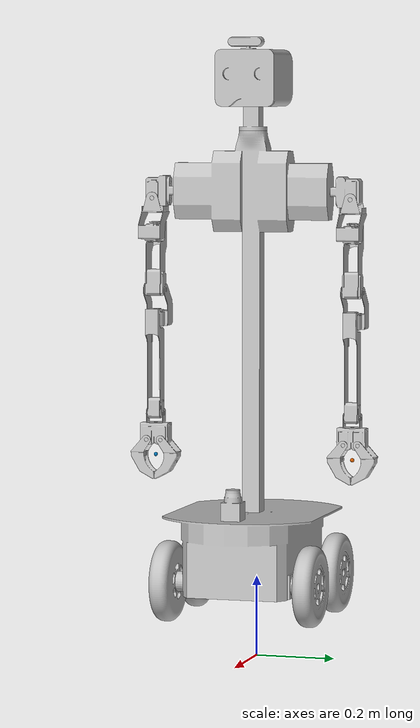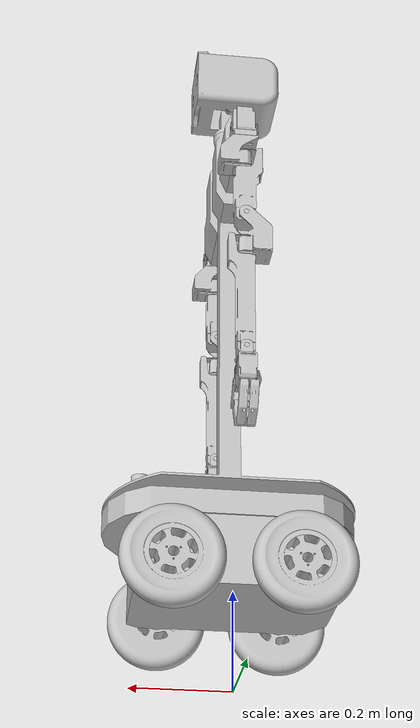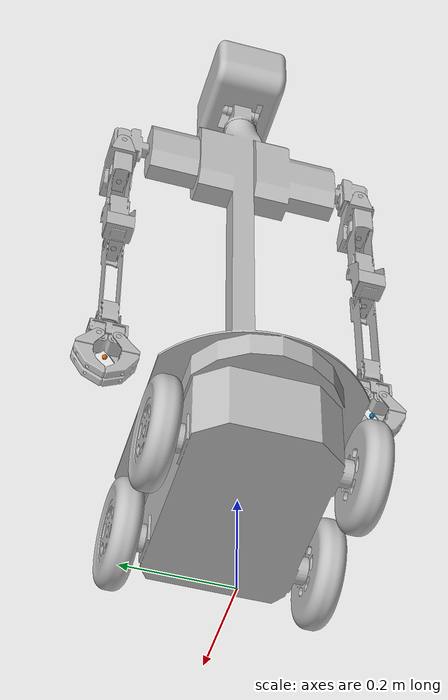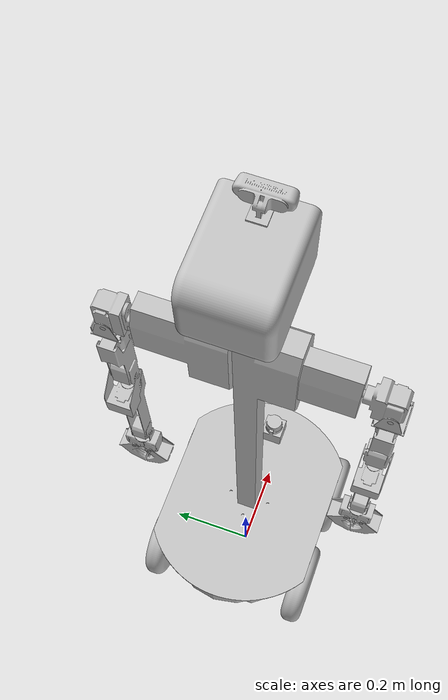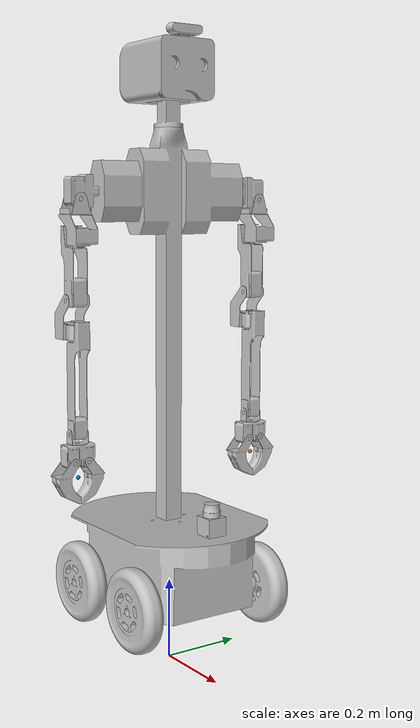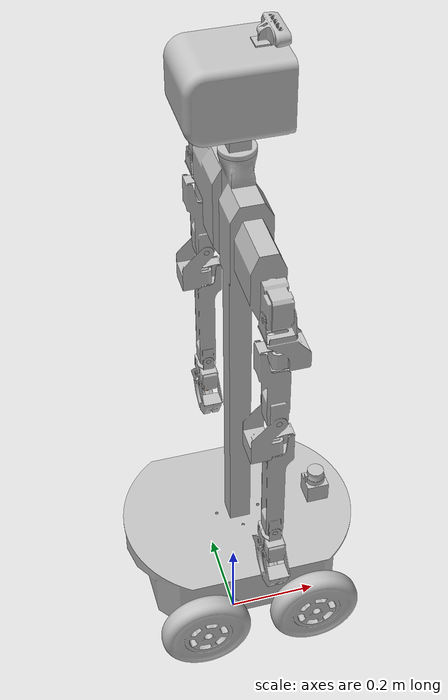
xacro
<?xml version="1.0" ?>
<robot name="bender" xmlns:xacro="http://www.ros.org/wiki/xacro">

<link name="base_link">
  <visual>
    <origin xyz="0 0 0" rpy="0 0 0"/>
    <geometry>
      <mesh filename="package://bender_description/meshes/base_link.stl" scale="0.001 0.001 0.001"/>
    </geometry>
    <material name="chassis_material">
      <color rgba="0.75 0.75 0.75 1.0"/>
    </material>
  </visual>
  <collision>
    <origin xyz="0 0 0" rpy="0 0 0"/>
    <geometry>
      <mesh filename="package://bender_description/meshes/base_link.stl" scale="0.001 0.001 0.001"/>
    </geometry>
  </collision>
</link>

<link name="base_footprint"/>

<joint name="base_footprint_joint" type="fixed">
  <parent link="base_footprint"/>
  <child link="base_link"/>
  <origin xyz="0 0 0.1" rpy="0 0 0"/>
</joint>

<link name="l2l_1">
  <inertial>
    <origin xyz="-0.008469138038562633 4.816697341814002e-07 -0.07819087904751898" rpy="0 0 0"/>
    <mass value="0.14071836856258027"/>
    <inertia ixx="9.8e-05" iyy="0.000118" izz="8.7e-05" ixy="-0.0" iyz="-0.0" ixz="1.7e-05"/>
  </inertial>
  <visual>
    <origin xyz="-0.035737 -0.247634 -1.04582" rpy="0 0 0"/>
    <geometry>
      <mesh filename="package://bender_description/meshes/l2l_1.stl" scale="0.001 0.001 0.001"/>
    </geometry>
    <material name="chassis_material">
      <color rgba="0.75 0.75 0.75 1.0"/>
    </material>
  </visual>
  <collision>
    <origin xyz="-0.035737 -0.247634 -1.04582" rpy="0 0 0"/>
    <geometry>
      <mesh filename="package://bender_description/meshes/l2l_1.stl" scale="0.001 0.001 0.001"/>
    </geometry>
  </collision>
</link>

<link name="l3l_1">
  <inertial>
    <origin xyz="-0.004049240589701097 -0.00011662761889197348 -0.1333626785766504" rpy="0 0 0"/>
    <mass value="0.13433192894969845"/>
    <inertia ixx="0.000296" iyy="0.000299" izz="4.9e-05" ixy="0.0" iyz="-0.0" ixz="4e-05"/>
  </inertial>
  <visual>
    <origin xyz="-0.007987 -0.247634 -0.985406" rpy="0 0 0"/>
    <geometry>
      <mesh filename="package://bender_description/meshes/l3l_1.stl" scale="0.001 0.001 0.001"/>
    </geometry>
    <material name="chassis_material">
      <color rgba="0.75 0.75 0.75 1.0"/>
    </material>
  </visual>
  <collision>
    <origin xyz="-0.007987 -0.247634 -0.985406" rpy="0 0 0"/>
    <geometry>
      <mesh filename="package://bender_description/meshes/l3l_1.stl" scale="0.001 0.001 0.001"/>
    </geometry>
  </collision>
</link>

<link name="l4l_1">
  <inertial>
    <origin xyz="-0.022033052289373113 -0.027751420924878867 -0.07009451131427447" rpy="0 0 0"/>
    <mass value="0.1319735958452518"/>
    <inertia ixx="6.8e-05" iyy="8e-05" izz="7.4e-05" ixy="-0.0" iyz="0.0" ixz="-2e-06"/>
  </inertial>
  <visual>
    <origin xyz="-0.006819 -0.275388 -0.815556" rpy="0 0 0"/>
    <geometry>
      <mesh filename="package://bender_description/meshes/l4l_1.stl" scale="0.001 0.001 0.001"/>
    </geometry>
    <material name="chassis_material">
      <color rgba="0.75 0.75 0.75 1.0"/>
    </material>
  </visual>
  <collision>
    <origin xyz="-0.006819 -0.275388 -0.815556" rpy="0 0 0"/>
    <geometry>
      <mesh filename="package://bender_description/meshes/l4l_1.stl" scale="0.001 0.001 0.001"/>
    </geometry>
  </collision>
</link>

<link name="l5l_1">
  <inertial>
    <origin xyz="0.0039138191304953236 -6.519106588914747e-05 -0.1904912654580233" rpy="0 0 0"/>
    <mass value="0.09538513786529154"/>
    <inertia ixx="0.000748" iyy="0.000753" izz="3e-05" ixy="-0.0" iyz="-0.0" ixz="-5.3e-05"/>
  </inertial>
  <visual>
    <origin xyz="-0.006819 -0.247637 -0.767806" rpy="0 0 0"/>
    <geometry>
      <mesh filename="package://bender_description/meshes/l5l_1.stl" scale="0.001 0.001 0.001"/>
    </geometry>
    <material name="chassis_material">
      <color rgba="0.75 0.75 0.75 1.0"/>
    </material>
  </visual>
  <collision>
    <origin xyz="-0.006819 -0.247637 -0.767806" rpy="0 0 0"/>
    <geometry>
      <mesh filename="package://bender_description/meshes/l5l_1.stl" scale="0.001 0.001 0.001"/>
    </geometry>
  </collision>
</link>

<link name="l6l_1">
  <inertial>
    <origin xyz="1.1454305421428751e-07 -0.02225042100756011 -0.015076116417847174" rpy="0 0 0"/>
    <mass value="0.004187419664904639"/>
    <inertia ixx="2e-06" iyy="1e-06" izz="2e-06" ixy="-0.0" iyz="0.0" ixz="-0.0"/>
  </inertial>
  <visual>
    <origin xyz="-0.007275 -0.269887 -0.504262" rpy="0 0 0"/>
    <geometry>
      <mesh filename="package://bender_description/meshes/l6l_1.stl" scale="0.001 0.001 0.001"/>
    </geometry>
    <material name="chassis_material">
      <color rgba="0.75 0.75 0.75 1.0"/>
    </material>
  </visual>
  <collision>
    <origin xyz="-0.007275 -0.269887 -0.504262" rpy="0 0 0"/>
    <geometry>
      <mesh filename="package://bender_description/meshes/l6l_1.stl" scale="0.001 0.001 0.001"/>
    </geometry>
  </collision>
</link>

<link name="l2r_1">
  <inertial>
    <origin xyz="-0.008469138038563282 4.816697872778164e-07 -0.07819087904754218" rpy="0 0 0"/>
    <mass value="0.14071836856258027"/>
    <inertia ixx="9.8e-05" iyy="0.000118" izz="8.7e-05" ixy="-0.0" iyz="-0.0" ixz="1.7e-05"/>
  </inertial>
  <visual>
    <origin xyz="-0.035737 0.262366 -1.04582" rpy="0 0 0"/>
    <geometry>
      <mesh filename="package://bender_description/meshes/l2r_1.stl" scale="0.001 0.001 0.001"/>
    </geometry>
    <material name="chassis_material">
      <color rgba="0.75 0.75 0.75 1.0"/>
    </material>
  </visual>
  <collision>
    <origin xyz="-0.035737 0.262366 -1.04582" rpy="0 0 0"/>
    <geometry>
      <mesh filename="package://bender_description/meshes/l2r_1.stl" scale="0.001 0.001 0.001"/>
    </geometry>
  </collision>
</link>

<link name="l3r_1">
  <inertial>
    <origin xyz="-0.004049240589694631 -0.00011662761884700945 -0.1333626785766734" rpy="0 0 0"/>
    <mass value="0.13433192894969845"/>
    <inertia ixx="0.000296" iyy="0.000299" izz="4.9e-05" ixy="0.0" iyz="-0.0" ixz="4e-05"/>
  </inertial>
  <visual>
    <origin xyz="-0.007987 0.262366 -0.985406" rpy="0 0 0"/>
    <geometry>
      <mesh filename="package://bender_description/meshes/l3r_1.stl" scale="0.001 0.001 0.001"/>
    </geometry>
    <material name="chassis_material">
      <color rgba="0.75 0.75 0.75 1.0"/>
    </material>
  </visual>
  <collision>
    <origin xyz="-0.007987 0.262366 -0.985406" rpy="0 0 0"/>
    <geometry>
      <mesh filename="package://bender_description/meshes/l3r_1.stl" scale="0.001 0.001 0.001"/>
    </geometry>
  </collision>
</link>

<link name="l4r_1">
  <inertial>
    <origin xyz="-0.022033052289359936 0.02775238458496604 -0.070094511314298" rpy="0 0 0"/>
    <mass value="0.1319735958452518"/>
    <inertia ixx="6.8e-05" iyy="8e-05" izz="7.4e-05" ixy="-0.0" iyz="0.0" ixz="-2e-06"/>
  </inertial>
  <visual>
    <origin xyz="-0.006819 0.290116 -0.815556" rpy="0 0 0"/>
    <geometry>
      <mesh filename="package://bender_description/meshes/l4r_1.stl" scale="0.001 0.001 0.001"/>
    </geometry>
    <material name="chassis_material">
      <color rgba="0.75 0.75 0.75 1.0"/>
    </material>
  </visual>
  <collision>
    <origin xyz="-0.006819 0.290116 -0.815556" rpy="0 0 0"/>
    <geometry>
      <mesh filename="package://bender_description/meshes/l4r_1.stl" scale="0.001 0.001 0.001"/>
    </geometry>
  </collision>
</link>

<link name="l5r_1">
  <inertial>
    <origin xyz="0.003913819130518236 -6.438555604931784e-05 -0.1904912654580455" rpy="0 0 0"/>
    <mass value="0.09538513786529154"/>
    <inertia ixx="0.000748" iyy="0.000753" izz="3e-05" ixy="-0.0" iyz="-0.0" ixz="-5.3e-05"/>
  </inertial>
  <visual>
    <origin xyz="-0.006819 0.262364 -0.767806" rpy="0 0 0"/>
    <geometry>
      <mesh filename="package://bender_description/meshes/l5r_1.stl" scale="0.001 0.001 0.001"/>
    </geometry>
    <material name="chassis_material">
      <color rgba="0.75 0.75 0.75 1.0"/>
    </material>
  </visual>
  <collision>
    <origin xyz="-0.006819 0.262364 -0.767806" rpy="0 0 0"/>
    <geometry>
      <mesh filename="package://bender_description/meshes/l5r_1.stl" scale="0.001 0.001 0.001"/>
    </geometry>
  </collision>
</link>

<link name="l6r_1">
  <inertial>
    <origin xyz="1.1454308115020628e-07 0.022250384502269127 -0.015076116417858498" rpy="0 0 0"/>
    <mass value="0.004187419664904639"/>
    <inertia ixx="2e-06" iyy="1e-06" izz="2e-06" ixy="-0.0" iyz="-0.0" ixz="0.0"/>
  </inertial>
  <visual>
    <origin xyz="-0.007275 0.284614 -0.504262" rpy="0 0 0"/>
    <geometry>
      <mesh filename="package://bender_description/meshes/l6r_1.stl" scale="0.001 0.001 0.001"/>
    </geometry>
    <material name="chassis_material">
      <color rgba="0.75 0.75 0.75 1.0"/>
    </material>
  </visual>
  <collision>
    <origin xyz="-0.007275 0.284614 -0.504262" rpy="0 0 0"/>
    <geometry>
      <mesh filename="package://bender_description/meshes/l6r_1.stl" scale="0.001 0.001 0.001"/>
    </geometry>
  </collision>
</link>

<link name="l2h_1">
  <inertial>
    <origin xyz="-0.01404344492546073 0.030000481747364617 0.06449858090998739" rpy="0 0 0"/>
    <mass value="3.4435410806483597"/>
    <inertia ixx="0.011996" iyy="0.015757" izz="0.017434" ixy="0.0" iyz="-0.0" ixz="-0.000256"/>
  </inertial>
  <visual>
    <origin xyz="-0.007987 0.037366 -1.28382" rpy="0 0 0"/>
    <geometry>
      <mesh filename="package://bender_description/meshes/l2h_1.stl" scale="0.001 0.001 0.001"/>
    </geometry>
    <material name="chassis_material">
      <color rgba="0.75 0.75 0.75 1.0"/>
    </material>
  </visual>
  <collision>
    <origin xyz="-0.007987 0.037366 -1.28382" rpy="0 0 0"/>
    <geometry>
      <mesh filename="package://bender_description/meshes/l2h_1.stl" scale="0.001 0.001 0.001"/>
    </geometry>
  </collision>
</link>

<link name="real_sense_1">
  <inertial>
    <origin xyz="0.019913541807561386 9.653953529717863e-05 0.02293582384539583" rpy="0 0 0"/>
    <mass value="0.061254068221964914"/>
    <inertia ixx="3.4e-05" iyy="1e-05" izz="3.7e-05" ixy="-0.0" iyz="-0.0" ixz="-1e-06"/>
  </inertial>
  <visual>
    <origin xyz="-0.049487 0.007366 -1.40882" rpy="0 0 0"/>
    <geometry>
      <mesh filename="package://bender_description/meshes/real_sense_1.stl" scale="0.001 0.001 0.001"/>
    </geometry>
    <material name="chassis_material">
      <color rgba="0.75 0.75 0.75 1.0"/>
    </material>
  </visual>
  <collision>
    <origin xyz="-0.049487 0.007366 -1.40882" rpy="0 0 0"/>
    <geometry>
      <mesh filename="package://bender_description/meshes/real_sense_1.stl" scale="0.001 0.001 0.001"/>
    </geometry>
  </collision>
</link>

<link name="g1r_1">
  <inertial>
    <origin xyz="6.478948623842799e-05 3.840721814474257e-07 -0.026736939315767316" rpy="0 0 0"/>
    <mass value="0.12876405832743776"/>
    <inertia ixx="8.6e-05" iyy="4.3e-05" izz="7e-05" ixy="-0.0" iyz="-0.0" ixz="0.0"/>
  </inertial>
  <visual>
    <origin xyz="-0.007275 0.262364 -0.480247" rpy="0 0 0"/>
    <geometry>
      <mesh filename="package://bender_description/meshes/g1r_1.stl" scale="0.001 0.001 0.001"/>
    </geometry>
    <material name="chassis_material">
      <color rgba="0.75 0.75 0.75 1.0"/>
    </material>
  </visual>
  <collision>
    <origin xyz="-0.007275 0.262364 -0.480247" rpy="0 0 0"/>
    <geometry>
      <mesh filename="package://bender_description/meshes/g1r_1.stl" scale="0.001 0.001 0.001"/>
    </geometry>
  </collision>
</link>

<link name="g2ra_1">
  <inertial>
    <origin xyz="-0.0220993118378398 0.01442646877260062 -0.05721188075257794" rpy="0 0 0"/>
    <mass value="0.05474843522698835"/>
    <inertia ixx="3.9e-05" iyy="3.7e-05" izz="2e-05" ixy="-0.0" iyz="-1e-05" ixz="0.0"/>
  </inertial>
  <visual>
    <origin xyz="-0.029225 0.243864 -0.438647" rpy="0 0 0"/>
    <geometry>
      <mesh filename="package://bender_description/meshes/g2ra_1.stl" scale="0.001 0.001 0.001"/>
    </geometry>
    <material name="chassis_material">
      <color rgba="0.75 0.75 0.75 1.0"/>
    </material>
  </visual>
  <collision>
    <origin xyz="-0.029225 0.243864 -0.438647" rpy="0 0 0"/>
    <geometry>
      <mesh filename="package://bender_description/meshes/g2ra_1.stl" scale="0.001 0.001 0.001"/>
    </geometry>
  </collision>
</link>

<link name="g2rb_1">
  <inertial>
    <origin xyz="-0.02210045907599773 -0.014425699768063904 -0.05721188075257849" rpy="0 0 0"/>
    <mass value="0.05474843522698835"/>
    <inertia ixx="3.9e-05" iyy="3.7e-05" izz="2e-05" ixy="-0.0" iyz="1e-05" ixz="-0.0"/>
  </inertial>
  <visual>
    <origin xyz="-0.029225 0.280864 -0.438647" rpy="0 0 0"/>
    <geometry>
      <mesh filename="package://bender_description/meshes/g2rb_1.stl" scale="0.001 0.001 0.001"/>
    </geometry>
    <material name="chassis_material">
      <color rgba="0.75 0.75 0.75 1.0"/>
    </material>
  </visual>
  <collision>
    <origin xyz="-0.029225 0.280864 -0.438647" rpy="0 0 0"/>
    <geometry>
      <mesh filename="package://bender_description/meshes/g2rb_1.stl" scale="0.001 0.001 0.001"/>
    </geometry>
  </collision>
</link>

<link name="g1l_1">
  <inertial>
    <origin xyz="6.478948621099247e-05 -4.2143764839019937e-07 -0.026736939315755603" rpy="0 0 0"/>
    <mass value="0.12876405832743776"/>
    <inertia ixx="8.6e-05" iyy="4.3e-05" izz="7e-05" ixy="-0.0" iyz="-0.0" ixz="0.0"/>
  </inertial>
  <visual>
    <origin xyz="-0.007275 -0.247637 -0.480247" rpy="0 0 0"/>
    <geometry>
      <mesh filename="package://bender_description/meshes/g1l_1.stl" scale="0.001 0.001 0.001"/>
    </geometry>
    <material name="chassis_material">
      <color rgba="0.75 0.75 0.75 1.0"/>
    </material>
  </visual>
  <collision>
    <origin xyz="-0.007275 -0.247637 -0.480247" rpy="0 0 0"/>
    <geometry>
      <mesh filename="package://bender_description/meshes/g1l_1.stl" scale="0.001 0.001 0.001"/>
    </geometry>
  </collision>
</link>

<link name="g2lb_1">
  <inertial>
    <origin xyz="-0.022099311837869458 0.014425663262769728 -0.057211880752566724" rpy="0 0 0"/>
    <mass value="0.05474843522698835"/>
    <inertia ixx="3.9e-05" iyy="3.7e-05" izz="2e-05" ixy="-0.0" iyz="-1e-05" ixz="0.0"/>
  </inertial>
  <visual>
    <origin xyz="-0.029225 -0.266137 -0.438647" rpy="0 0 0"/>
    <geometry>
      <mesh filename="package://bender_description/meshes/g2lb_1.stl" scale="0.001 0.001 0.001"/>
    </geometry>
    <material name="chassis_material">
      <color rgba="0.75 0.75 0.75 1.0"/>
    </material>
  </visual>
  <collision>
    <origin xyz="-0.029225 -0.266137 -0.438647" rpy="0 0 0"/>
    <geometry>
      <mesh filename="package://bender_description/meshes/g2lb_1.stl" scale="0.001 0.001 0.001"/>
    </geometry>
  </collision>
</link>

<link name="g2la_1">
  <inertial>
    <origin xyz="-0.022100459076024488 -0.01442650527789352 -0.057211880752566335" rpy="0 0 0"/>
    <mass value="0.05474843522698835"/>
    <inertia ixx="3.9e-05" iyy="3.7e-05" izz="2e-05" ixy="-0.0" iyz="1e-05" ixz="-0.0"/>
  </inertial>
  <visual>
    <origin xyz="-0.029225 -0.229137 -0.438647" rpy="0 0 0"/>
    <geometry>
      <mesh filename="package://bender_description/meshes/g2la_1.stl" scale="0.001 0.001 0.001"/>
    </geometry>
    <material name="chassis_material">
      <color rgba="0.75 0.75 0.75 1.0"/>
    </material>
  </visual>
  <collision>
    <origin xyz="-0.029225 -0.229137 -0.438647" rpy="0 0 0"/>
    <geometry>
      <mesh filename="package://bender_description/meshes/g2la_1.stl" scale="0.001 0.001 0.001"/>
    </geometry>
  </collision>
</link>

<link name="laser">
  <inertial>
    <origin xyz="0.00021452729941068283 1.2832545766421587e-05 0.03715423693922987" rpy="0 0 0"/>
    <mass value="0.14304545734211704"/>
    <inertia ixx="8.2e-05" iyy="8.2e-05" izz="4.9e-05" ixy="-0.0" iyz="0.0" ixz="0.0"/>
  </inertial>
  <visual>
    <origin xyz="-0.188322 0.007366 -0.25882" rpy="0 0 0"/>
    <geometry>
      <mesh filename="package://bender_description/meshes/laser_1.stl" scale="0.001 0.001 0.001"/>
    </geometry>
    <material name="chassis_material">
      <color rgba="0.75 0.75 0.75 1.0"/>
    </material>
  </visual>
  <collision>
    <origin xyz="-0.188322 0.007366 -0.25882" rpy="0 0 0"/>
    <geometry>
      <mesh filename="package://bender_description/meshes/laser_1.stl" scale="0.001 0.001 0.001"/>
    </geometry>
  </collision>
</link>

<link name="wfr_1">
  <inertial>
    <origin xyz="1.883831442783812e-07 -0.024064274086889242 -4.815819601294846e-07" rpy="0 0 0"/>
    <mass value="1.281712318430354"/>
    <inertia ixx="0.003526" iyy="0.006601" izz="0.003526" ixy="-0.0" iyz="0.0" ixz="0.0"/>
  </inertial>
  <visual>
    <origin xyz="-0.135487 0.164865 -0.09982" rpy="0 0 0"/>
    <geometry>
      <mesh filename="package://bender_description/meshes/wfr_1.stl" scale="0.001 0.001 0.001"/>
    </geometry>
    <material name="chassis_material">
      <color rgba="0.75 0.75 0.75 1.0"/>
    </material>
  </visual>
  <collision>
    <origin xyz="-0.135487 0.164865 -0.09982" rpy="0 0 0"/>
    <geometry>
      <mesh filename="package://bender_description/meshes/wfr_1.stl" scale="0.001 0.001 0.001"/>
    </geometry>
  </collision>
</link>

<link name="wrr_1">
  <inertial>
    <origin xyz="1.883831442783812e-07 -0.024064274086889104 -4.815819601294846e-07" rpy="0 0 0"/>
    <mass value="1.281712318430354"/>
    <inertia ixx="0.003526" iyy="0.006601" izz="0.003526" ixy="-0.0" iyz="0.0" ixz="0.0"/>
  </inertial>
  <visual>
    <origin xyz="0.114513 0.164865 -0.09982" rpy="0 0 0"/>
    <geometry>
      <mesh filename="package://bender_description/meshes/wrr_1.stl" scale="0.001 0.001 0.001"/>
    </geometry>
    <material name="chassis_material">
      <color rgba="0.75 0.75 0.75 1.0"/>
    </material>
  </visual>
  <collision>
    <origin xyz="0.114513 0.164865 -0.09982" rpy="0 0 0"/>
    <geometry>
      <mesh filename="package://bender_description/meshes/wrr_1.stl" scale="0.001 0.001 0.001"/>
    </geometry>
  </collision>
</link>

<link name="wfl_1">
  <inertial>
    <origin xyz="1.8838314436164794e-07 0.024065023691868914 -4.80844077374587e-07" rpy="0 0 0"/>
    <mass value="1.281712318430354"/>
    <inertia ixx="0.003526" iyy="0.006601" izz="0.003526" ixy="0.0" iyz="0.0" ixz="-0.0"/>
  </inertial>
  <visual>
    <origin xyz="-0.135487 -0.150135 -0.09982" rpy="0 0 0"/>
    <geometry>
      <mesh filename="package://bender_description/meshes/wfl_1.stl" scale="0.001 0.001 0.001"/>
    </geometry>
    <material name="chassis_material">
      <color rgba="0.75 0.75 0.75 1.0"/>
    </material>
  </visual>
  <collision>
    <origin xyz="-0.135487 -0.150135 -0.09982" rpy="0 0 0"/>
    <geometry>
      <mesh filename="package://bender_description/meshes/wfl_1.stl" scale="0.001 0.001 0.001"/>
    </geometry>
  </collision>
</link>

<link name="wrl_1">
  <inertial>
    <origin xyz="1.8838314437552572e-07 0.02406502369186897 -4.808440774717315e-07" rpy="0 0 0"/>
    <mass value="1.281712318430354"/>
    <inertia ixx="0.003526" iyy="0.006601" izz="0.003526" ixy="0.0" iyz="0.0" ixz="-0.0"/>
  </inertial>
  <visual>
    <origin xyz="0.114513 -0.150135 -0.09982" rpy="0 0 0"/>
    <geometry>
      <mesh filename="package://bender_description/meshes/wrl_1.stl" scale="0.001 0.001 0.001"/>
    </geometry>
    <material name="chassis_material">
      <color rgba="0.75 0.75 0.75 1.0"/>
    </material>
  </visual>
  <collision>
    <origin xyz="0.114513 -0.150135 -0.09982" rpy="0 0 0"/>
    <geometry>
      <mesh filename="package://bender_description/meshes/wrl_1.stl" scale="0.001 0.001 0.001"/>
    </geometry>
  </collision>
</link>

<link name="l1r_1">
  <inertial>
    <origin xyz="-7.750802465356262e-05 -0.023051471870294216 -0.0003746843245819864" rpy="0 0 0"/>
    <mass value="0.17510122063008318"/>
    <inertia ixx="0.000118" iyy="9.1e-05" izz="8e-05" ixy="-0.0" iyz="-1e-06" ixz="-0.0"/>
  </inertial>
  <visual>
    <origin xyz="-0.007987 0.227866 -1.06382" rpy="0 0 0"/>
    <geometry>
      <mesh filename="package://bender_description/meshes/l1r_1.stl" scale="0.001 0.001 0.001"/>
    </geometry>
    <material name="chassis_material">
      <color rgba="0.75 0.75 0.75 1.0"/>
    </material>
  </visual>
  <collision>
    <origin xyz="-0.007987 0.227866 -1.06382" rpy="0 0 0"/>
    <geometry>
      <mesh filename="package://bender_description/meshes/l1r_1.stl" scale="0.001 0.001 0.001"/>
    </geometry>
  </collision>
</link>

<link name="l1l_1">
  <inertial>
    <origin xyz="7.755064862937852e-05 0.023052435365023938 -0.0003746843245824305" rpy="0 0 0"/>
    <mass value="0.17510122063008318"/>
    <inertia ixx="0.000118" iyy="9.1e-05" izz="8e-05" ixy="-0.0" iyz="1e-06" ixz="0.0"/>
  </inertial>
  <visual>
    <origin xyz="-0.007987 -0.213134 -1.06382" rpy="0 0 0"/>
    <geometry>
      <mesh filename="package://bender_description/meshes/l1l_1.stl" scale="0.001 0.001 0.001"/>
    </geometry>
    <material name="chassis_material">
      <color rgba="0.75 0.75 0.75 1.0"/>
    </material>
  </visual>
  <collision>
    <origin xyz="-0.007987 -0.213134 -1.06382" rpy="0 0 0"/>
    <geometry>
      <mesh filename="package://bender_description/meshes/l1l_1.stl" scale="0.001 0.001 0.001"/>
    </geometry>
  </collision>
</link>

<link name="l1h_1">
  <inertial>
    <origin xyz="2.1311988054537045e-08 4.817473648098883e-07 0.03361523031913305" rpy="0 0 0"/>
    <mass value="0.14686451647034876"/>
    <inertia ixx="0.000113" iyy="0.000108" izz="5.4e-05" ixy="-0.0" iyz="0.0" ixz="0.0"/>
  </inertial>
  <visual>
    <origin xyz="-0.007987 0.007366 -1.21382" rpy="0 0 0"/>
    <geometry>
      <mesh filename="package://bender_description/meshes/l1h_1.stl" scale="0.001 0.001 0.001"/>
    </geometry>
    <material name="chassis_material">
      <color rgba="0.75 0.75 0.75 1.0"/>
    </material>
  </visual>
  <collision>
    <origin xyz="-0.007987 0.007366 -1.21382" rpy="0 0 0"/>
    <geometry>
      <mesh filename="package://bender_description/meshes/l1h_1.stl" scale="0.001 0.001 0.001"/>
    </geometry>
  </collision>
</link>

<joint name="l2l_to_l1l" type="revolute">
  <origin xyz="0.02775 0.0345 -0.018" rpy="0 0 0"/>
  <parent link="l1l_1"/>
  <child link="l2l_1"/>
  <axis xyz="1.0 0.0 -0.0"/>
  <limit upper="1.570796" lower="0.0" effort="100" velocity="100"/>
</joint>

<joint name="l3l_to_l2l" type="revolute">
  <origin xyz="-0.02775 0.0 -0.060414" rpy="0 0 0"/>
  <parent link="l2l_1"/>
  <child link="l3l_1"/>
  <axis xyz="0.0 -0.0 1.0"/>
  <limit upper="1.134464" lower="-1.134464" effort="100" velocity="100"/>
</joint>

<joint name="l4l_to_l3l" type="revolute">
  <origin xyz="-0.001168 0.027754 -0.16985" rpy="0 0 0"/>
  <parent link="l3l_1"/>
  <child link="l4l_1"/>
  <axis xyz="-0.0 1.0 0.0"/>
  <limit upper="0.0" lower="-2.356194" effort="100" velocity="100"/>
</joint>

<joint name="l5l_to_l4l" type="revolute">
  <origin xyz="0.0 -0.027751 -0.04775" rpy="0 0 0"/>
  <parent link="l4l_1"/>
  <child link="l5l_1"/>
  <axis xyz="0.0 -0.0 1.0"/>
  <limit upper="1.047198" lower="-1.047198" effort="100" velocity="100"/>
</joint>

<joint name="l6l_to_l5l" type="revolute">
  <origin xyz="0.000456 0.02225 -0.263544" rpy="0 0 0"/>
  <parent link="l5l_1"/>
  <child link="l6l_1"/>
  <axis xyz="0.0 1.0 0.0"/>
  <limit upper="1.570796" lower="-1.570796" effort="100" velocity="100"/>
</joint>

<joint name="l2r_to_l1r" type="revolute">
  <origin xyz="0.02775 -0.0345 -0.018" rpy="0 0 0"/>
  <parent link="l1r_1"/>
  <child link="l2r_1"/>
  <axis xyz="1.0 0.0 0.0"/>
  <limit upper="0.0" lower="-1.570796" effort="100" velocity="100"/>
</joint>

<joint name="l3r_to_l2r" type="revolute">
  <origin xyz="-0.02775 0.0 -0.060414" rpy="0 0 0"/>
  <parent link="l2r_1"/>
  <child link="l3r_1"/>
  <axis xyz="0.0 0.0 1.0"/>
  <limit upper="1.134464" lower="-1.134464" effort="100" velocity="100"/>
</joint>

<joint name="l4r_to_l3r" type="revolute">
  <origin xyz="-0.001168 -0.02775 -0.16985" rpy="0 0 0"/>
  <parent link="l3r_1"/>
  <child link="l4r_1"/>
  <axis xyz="-0.0 -1.0 0.0"/>
  <limit upper="2.356194" lower="0.0" effort="100" velocity="100"/>
</joint>

<joint name="l5r_to_l4r" type="revolute">
  <origin xyz="0.0 0.027752 -0.04775" rpy="0 0 0"/>
  <parent link="l4r_1"/>
  <child link="l5r_1"/>
  <axis xyz="-0.0 0.0 1.0"/>
  <limit upper="1.047198" lower="-1.047198" effort="100" velocity="100"/>
</joint>

<joint name="l6r_to_l5r" type="revolute">
  <origin xyz="0.000456 -0.02225 -0.263544" rpy="0 0 0"/>
  <parent link="l5r_1"/>
  <child link="l6r_1"/>
  <axis xyz="-0.0 -1.0 0.0"/>
  <limit upper="1.570796" lower="-1.570796" effort="100" velocity="100"/>
</joint>

<joint name="lh2_to_lh1" type="fixed">
  <origin xyz="0.0 -0.03 0.07" rpy="0 0 0"/>
  <parent link="l1h_1"/>
  <child link="l2h_1"/>
</joint>

<joint name="real_sense_to_lh2" type="fixed">
  <origin xyz="0.0415 0.03 0.125" rpy="0 0 0"/>
  <parent link="l2h_1"/>
  <child link="real_sense_1"/>
</joint>

<joint name="g1r_to_l6r" type="fixed">
  <origin xyz="0.0 0.02225 -0.024015" rpy="0 0 0"/>
  <parent link="l6r_1"/>
  <child link="g1r_1"/>
</joint>

<joint name="g2ra_to_g1r" type="revolute">
  <origin xyz="0.02195 0.0185 -0.0416" rpy="0 0 0"/>
  <parent link="g1r_1"/>
  <child link="g2ra_1"/>
  <axis xyz="1.0 -0.0 -0.0"/>
  <limit upper="1.570796" lower="0.0" effort="100" velocity="100"/>
</joint>

<joint name="g2rb_to_g1r" type="revolute">
  <origin xyz="0.02195 -0.0185 -0.0416" rpy="0 0 0"/>
  <parent link="g1r_1"/>
  <child link="g2rb_1"/>
  <axis xyz="1.0 -0.0 -0.0"/>
  <limit upper="0.0" lower="-1.570796" effort="100" velocity="100"/>
</joint>

<joint name="g1l_to_l6l" type="fixed">
  <origin xyz="0.0 -0.02225 -0.024015" rpy="0 0 0"/>
  <parent link="l6l_1"/>
  <child link="g1l_1"/>
</joint>

<joint name="g2lb_to_g1l" type="revolute">
  <origin xyz="0.02195 0.0185 -0.0416" rpy="0 0 0"/>
  <parent link="g1l_1"/>
  <child link="g2lb_1"/>
  <axis xyz="1.0 0.0 -0.0"/>
  <limit upper="1.570796" lower="0.0" effort="100" velocity="100"/>
</joint>

<joint name="g2la_to_g1l" type="revolute">
  <origin xyz="0.02195 -0.0185 -0.0416" rpy="0 0 0"/>
  <parent link="g1l_1"/>
  <child link="g2la_1"/>
  <axis xyz="1.0 0.0 -0.0"/>
  <limit upper="0.0" lower="-1.570796" effort="100" velocity="100"/>
</joint>

<joint name="laser_to_base_link" type="fixed">
  <origin xyz="0.188322 -0.007366 0.25882" rpy="0 0 0"/>
  <parent link="base_link"/>
  <child link="laser"/>
</joint>

<joint name="wfr_to_base_link" type="fixed">
  <origin xyz="0.135487 -0.164865 0.09982" rpy="0 0 0"/>
  <parent link="base_link"/>
  <child link="wfr_1"/>
</joint>

<joint name="wrr_to_base_link" type="fixed">
  <origin xyz="-0.114513 -0.164865 0.09982" rpy="0 0 0"/>
  <parent link="base_link"/>
  <child link="wrr_1"/>
</joint>

<joint name="wfl_to_base_link" type="fixed">
  <origin xyz="0.135487 0.150135 0.09982" rpy="0 0 0"/>
  <parent link="base_link"/>
  <child link="wfl_1"/>
</joint>

<joint name="wrl_to_base_link" type="fixed">
  <origin xyz="-0.114513 0.150135 0.09982" rpy="0 0 0"/>
  <parent link="base_link"/>
  <child link="wrl_1"/>
</joint>

<joint name="l1r_to_base_link" type="revolute">
  <origin xyz="0.007987 -0.227866 1.06382" rpy="0 0 0"/>
  <parent link="base_link"/>
  <child link="l1r_1"/>
  <axis xyz="0.0 -1.0 0.0"/>
  <limit upper="2.356194" lower="-1.570796" effort="100" velocity="100"/>
</joint>

<joint name="l1l_to_base_link" type="revolute">
  <origin xyz="0.007987 0.213134 1.06382" rpy="0 0 0"/>
  <parent link="base_link"/>
  <child link="l1l_1"/>
  <axis xyz="0.0 1.0 0.0"/>
  <limit upper="1.570796" lower="-2.356194" effort="100" velocity="100"/>
</joint>

<joint name="l1h_to_base_link" type="fixed">
  <origin xyz="0.007987 -0.007366 1.21382" rpy="0 0 0"/>
  <parent link="base_link"/>
  <child link="l1h_1"/>
</joint>

<!-- TCP definition for end-effectors references -->

<!-- right end_effector link and joint -->
<link name="tcp_r">
  <visual>
    <origin xyz="0.0 0.0 0.0" rpy="0 0 0"/>
    <geometry>
      <sphere radius="0.005"/>
    </geometry>
  </visual>
</link>

<joint name="end_effector_r" type="fixed">
  <parent link="g1r_1"/>
  <child link="tcp_r"/>
  <origin xyz="0.0 0.0 -0.08" rpy="3.1416 0 0"/>
</joint>

<!-- left end_effector link and joint -->
<link name="tcp_l">
  <visual>
    <origin xyz="0.0 0.0 0.0" rpy="0 0 0"/>
    <geometry>
      <sphere radius="0.005"/>
    </geometry>
  </visual>
</link>

<joint name="end_effector_l" type="fixed">
  <parent link="g1l_1"/>
  <child link="tcp_l"/>
  <origin xyz="0.0 0.0 -0.08" rpy="3.1416 0 0"/>
</joint>

</robot>
